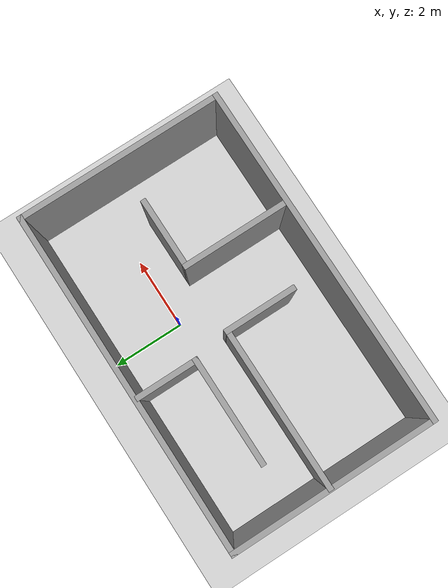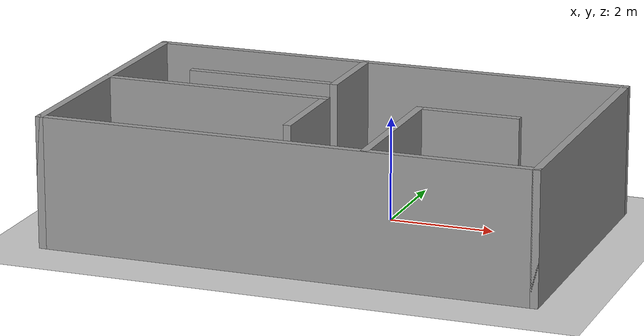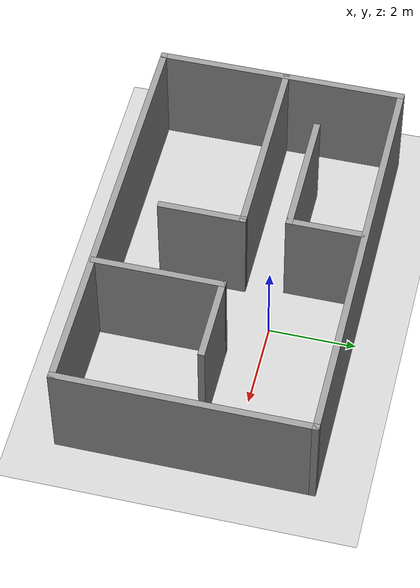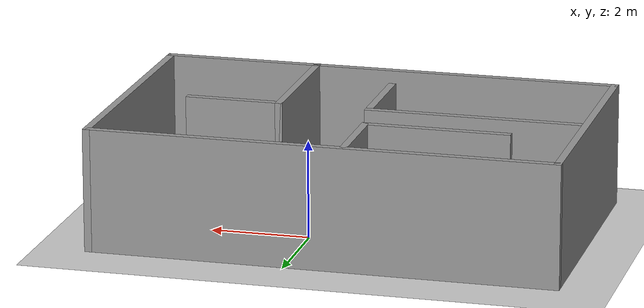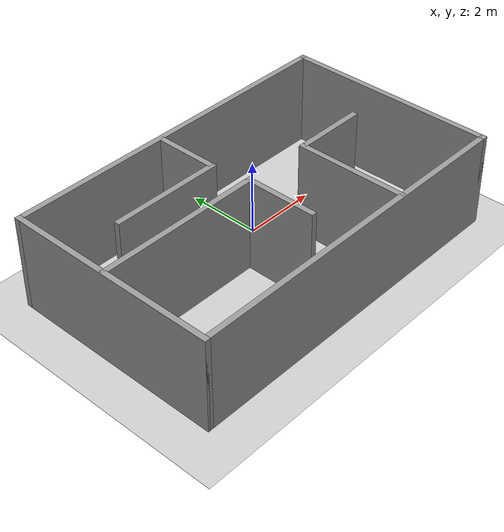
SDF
<sdf version="1.7">
 <world name="default">
  <light name="sun" type="directional">
   <pose>0 0 10 0 -0 0</pose>
   <diffuse>0.8 0.8 0.8 1</diffuse>
   <specular>0.2 0.2 0.2 1</specular>
   <attenuation>
    <range>1000</range>
    <constant>0.9</constant>
    <linear>0.01</linear>
    <quadratic>0.001</quadratic>
   </attenuation>
   <direction>-0.5 0.1 -0.9</direction>
   <spot><inner_angle>0</inner_angle><outer_angle>0</outer_angle><falloff>0</falloff></spot>
  </light>
  <model name="ground_plane">
   <static>1</static>
   <link name="link">
    <collision name="collision">
     <geometry><plane><normal>0 0 1</normal><size>100 100</size></plane></geometry>
     <surface><friction><ode><mu>100</mu><mu2>50</mu2></ode></friction></surface>
    </collision>
    <visual name="visual">
     <cast_shadows>0</cast_shadows>
     <geometry><plane><normal>0 0 1</normal><size>100 100</size></plane></geometry>
     <material>
      <script><uri>file://media/materials/scripts/gazebo.material</uri><name>Gazebo/Grey</name></script>
     </material>
    </visual>
   </link>
  </model>
  <gravity>0 0 -9.8</gravity>
  <magnetic_field>6e-06 2.3e-05 -4.2e-05</magnetic_field>
  <atmosphere type="adiabatic"/>
  <physics type="ode">
   <max_step_size>0.001</max_step_size>
   <real_time_factor>1</real_time_factor>
   <real_time_update_rate>1000</real_time_update_rate>
  </physics>
  <scene><ambient>0.4 0.4 0.4 1</ambient><background>0.7 0.7 0.7 1</background><shadows>1</shadows></scene>
  <audio><device>default</device></audio>
  <spherical_coordinates>
   <surface_model>EARTH_WGS84</surface_model>
   <latitude_deg>0</latitude_deg>
   <longitude_deg>0</longitude_deg>
   <elevation>0</elevation>
   <heading_deg>0</heading_deg>
  </spherical_coordinates>
  <model name="room">
   <pose>-0.713446 -0.156571 0 0 -0 0</pose>
   <link name="Wall_1">
    <collision name="Wall_1_Collision">
     <geometry><box><size>5.75 0.15 2.5</size></box></geometry>
     <pose>0 0 1.25 0 -0 0</pose>
    </collision>
    <visual name="Wall_1_Visual">
     <pose>0 0 1.25 0 -0 0</pose>
     <geometry><box><size>5.75 0.15 2.5</size></box></geometry>
     <material>
      <script><uri>file://media/materials/scripts/gazebo.material</uri><name>Gazebo/Grey</name></script>
      <ambient>1 1 1 1</ambient>
     </material>
     <meta><layer>0</layer></meta>
    </visual>
    <pose>-4.675 -0.7875 0 0 -0 -1.5708</pose>
   </link>
   <link name="Wall_10">
    <collision name="Wall_10_Collision">
     <geometry><box><size>2 0.15 2.5</size></box></geometry>
     <pose>0 0 1.25 0 -0 0</pose>
    </collision>
    <visual name="Wall_10_Visual">
     <pose>0 0 1.25 0 -0 0</pose>
     <geometry><box><size>2 0.15 2.5</size></box></geometry>
     <material>
      <script><uri>file://media/materials/scripts/gazebo.material</uri><name>Gazebo/Grey</name></script>
      <ambient>1 1 1 1</ambient>
     </material>
     <meta><layer>0</layer></meta>
    </visual>
    <pose>2.47 -0.6975 0 0 -0 0</pose>
   </link>
   <link name="Wall_12">
    <collision name="Wall_12_Collision">
     <geometry><box><size>3 0.15 2.5</size></box></geometry>
     <pose>0 0 1.25 0 -0 0</pose>
    </collision>
    <visual name="Wall_12_Visual">
     <pose>0 0 1.25 0 -0 0</pose>
     <geometry><box><size>3 0.15 2.5</size></box></geometry>
     <material>
      <script><uri>file://media/materials/scripts/gazebo.material</uri><name>Gazebo/Grey</name></script>
      <ambient>1 1 1 1</ambient>
     </material>
     <meta><layer>0</layer></meta>
    </visual>
    <pose>-1.9 0.3225 0 0 -0 0</pose>
   </link>
   <link name="Wall_13">
    <collision name="Wall_13_Collision">
     <geometry><box><size>1.75 0.15 2.5</size></box></geometry>
     <pose>0 0 1.25 0 -0 0</pose>
    </collision>
    <visual name="Wall_13_Visual">
     <pose>0 0 1.25 0 -0 0</pose>
     <geometry><box><size>1.75 0.15 2.5</size></box></geometry>
     <material>
      <script><uri>file://media/materials/scripts/gazebo.material</uri><name>Gazebo/Grey</name></script>
      <ambient>1 1 1 1</ambient>
     </material>
     <meta><layer>0</layer></meta>
    </visual>
    <pose>-0.475 1.1225 0 0 -0 1.5708</pose>
   </link>
   <link name="Wall_2">
    <collision name="Wall_2_Collision">
     <geometry><box><size>9.5 0.15 2.5</size></box></geometry>
     <pose>0 0 1.25 0 -0 0</pose>
    </collision>
    <visual name="Wall_2_Visual">
     <pose>0 0 1.25 0 -0 0</pose>
     <geometry><box><size>9.5 0.15 2.5</size></box></geometry>
     <material>
      <script><uri>file://media/materials/scripts/gazebo.material</uri><name>Gazebo/Grey</name></script>
      <ambient>1 1 1 1</ambient>
     </material>
     <meta><layer>0</layer></meta>
    </visual>
    <pose>0 -3.5875 0 0 -0 0</pose>
   </link>
   <link name="Wall_3">
    <collision name="Wall_3_Collision">
     <geometry><box><size>5.75 0.15 2.5</size></box></geometry>
     <pose>0 0 1.25 0 -0 0</pose>
    </collision>
    <visual name="Wall_3_Visual">
     <pose>0 0 1.25 0 -0 0</pose>
     <geometry><box><size>5.75 0.15 2.5</size></box></geometry>
     <material>
      <script><uri>file://media/materials/scripts/gazebo.material</uri><name>Gazebo/Grey</name></script>
      <ambient>1 1 1 1</ambient>
     </material>
     <meta><layer>0</layer></meta>
    </visual>
    <pose>4.675 -0.7875 0 0 -0 1.5708</pose>
   </link>
   <link name="Wall_4">
    <collision name="Wall_4_Collision">
     <geometry><box><size>9.5 0.15 2.5</size></box></geometry>
     <pose>0 0 1.25 0 -0 0</pose>
    </collision>
    <visual name="Wall_4_Visual">
     <pose>0 0 1.25 0 -0 0</pose>
     <geometry><box><size>9.5 0.15 2.5</size></box></geometry>
     <material>
      <script><uri>file://media/materials/scripts/gazebo.material</uri><name>Gazebo/Grey</name></script>
      <ambient>1 1 1 1</ambient>
     </material>
     <meta><layer>0</layer></meta>
    </visual>
    <pose>0 2.0125 0 0 -0 3.14159</pose>
   </link>
   <link name="Wall_6">
    <collision name="Wall_6_Collision">
     <geometry><box><size>4.5 0.15 2.5</size></box></geometry>
     <pose>0 0 1.25 0 -0 0</pose>
    </collision>
    <visual name="Wall_6_Visual">
     <pose>0 0 1.25 0 -0 0</pose>
     <geometry><box><size>4.5 0.15 2.5</size></box></geometry>
     <material>
      <script><uri>file://media/materials/scripts/gazebo.material</uri><name>Gazebo/Grey</name></script>
      <ambient>1 1 1 1</ambient>
     </material>
     <meta><layer>0</layer></meta>
    </visual>
    <pose>-2.47 -0.6775 0 0 -0 0</pose>
   </link>
   <link name="Wall_7">
    <collision name="Wall_7_Collision">
     <geometry><box><size>2 0.15 2.5</size></box></geometry>
     <pose>0 0 1.25 0 -0 0</pose>
    </collision>
    <visual name="Wall_7_Visual">
     <pose>0 0 1.25 0 -0 0</pose>
     <geometry><box><size>2 0.15 2.5</size></box></geometry>
     <material>
      <script><uri>file://media/materials/scripts/gazebo.material</uri><name>Gazebo/Grey</name></script>
      <ambient>1 1 1 1</ambient>
     </material>
     <meta><layer>0</layer></meta>
    </visual>
    <pose>-0.295 -1.6025 0 0 -0 -1.5708</pose>
   </link>
   <link name="Wall_9">
    <collision name="Wall_9_Collision">
     <geometry><box><size>3 0.15 2.5</size></box></geometry>
     <pose>0 0 1.25 0 -0 0</pose>
    </collision>
    <visual name="Wall_9_Visual">
     <pose>0 0 1.25 0 -0 0</pose>
     <geometry><box><size>3 0.15 2.5</size></box></geometry>
     <material>
      <script><uri>file://media/materials/scripts/gazebo.material</uri><name>Gazebo/Grey</name></script>
      <ambient>1 1 1 1</ambient>
     </material>
     <meta><layer>0</layer></meta>
    </visual>
    <pose>1.545 -2.1225 0 0 -0 1.5708</pose>
   </link>
   <static>1</static>
  </model>
 </world>
</sdf>
